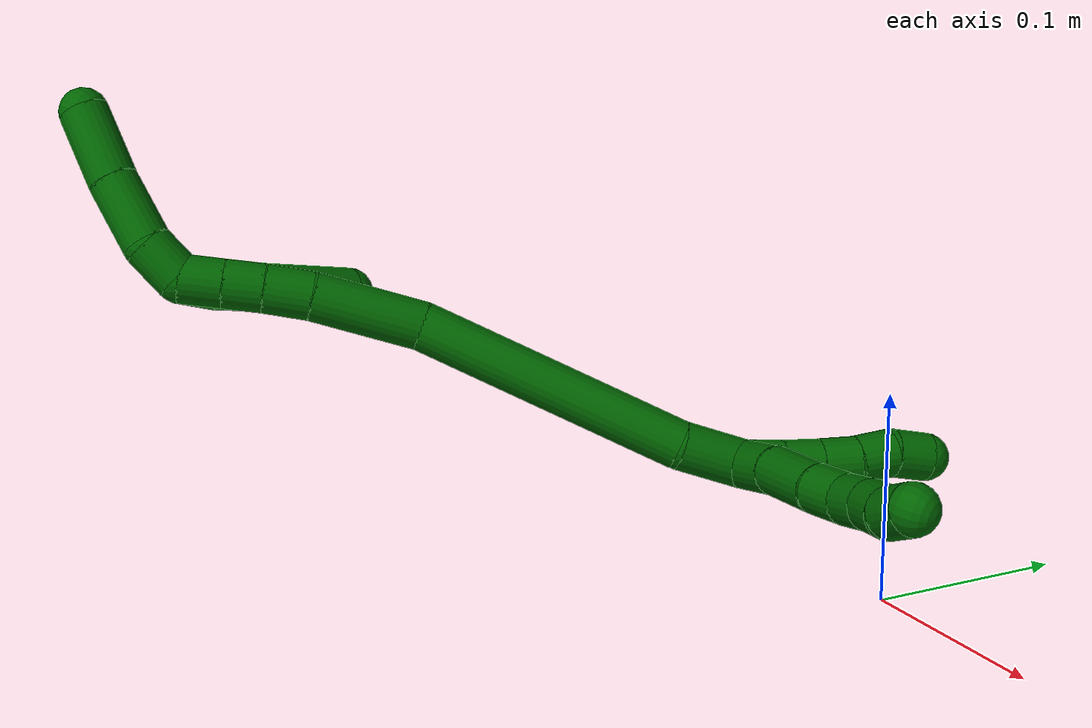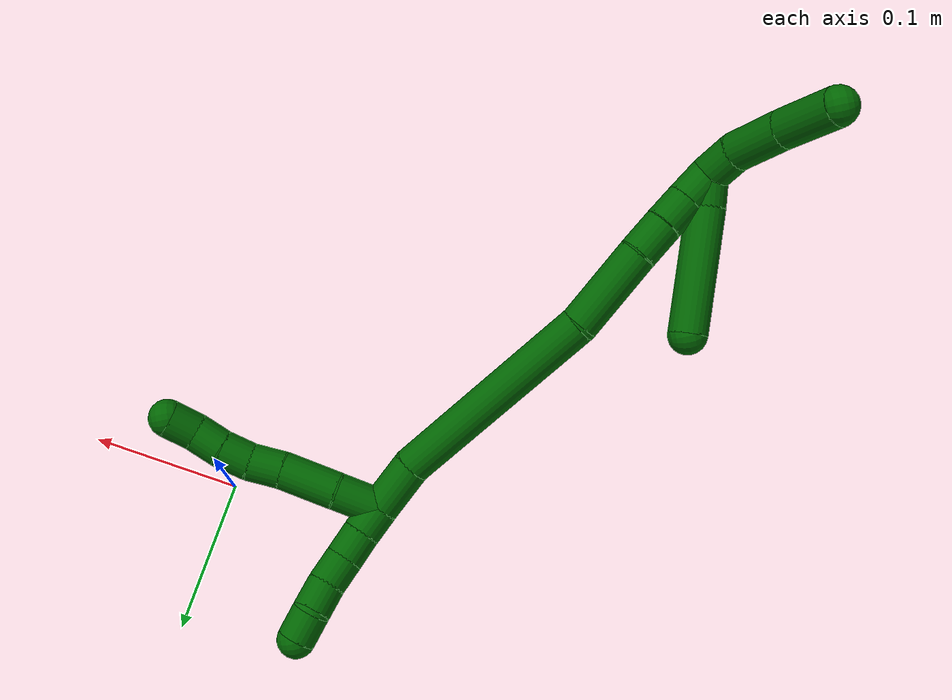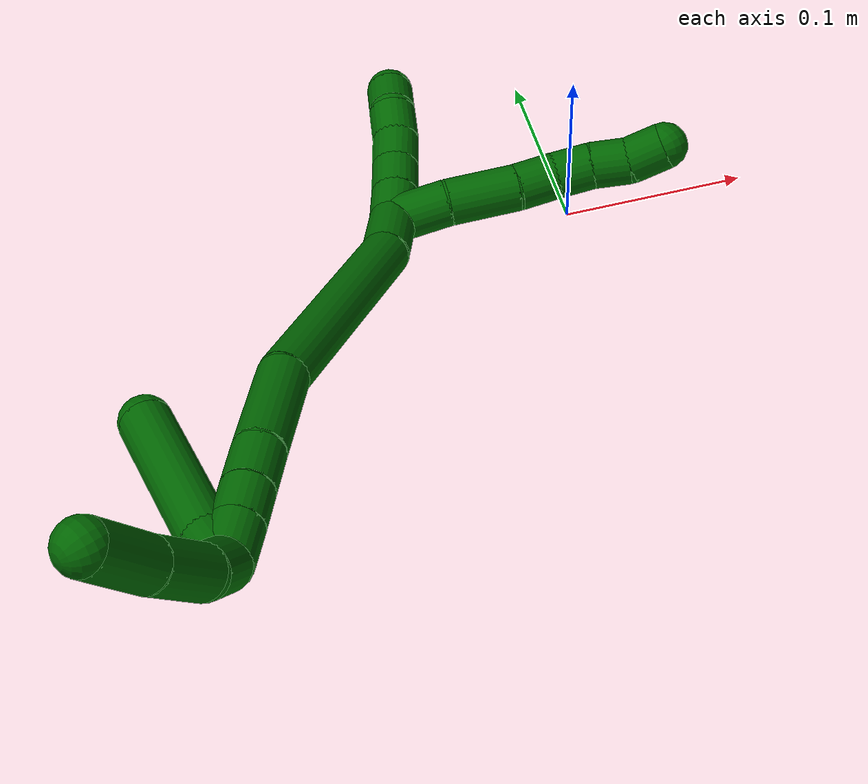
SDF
<sdf version="1.7">
 <world name="default">
  <model name="6">
   <static>0</static>
   <link name="6">
    <collision name="collision-cylinder-e_1_2_8">
     <pose>0.008303 -0.002987 -0.012387 2.90495 0.577544 2.3803</pose>
     <geometry><cylinder><radius>0.0125</radius><length>0.030417</length></cylinder></geometry>
     <surface>
      <friction><ode><mu>1.16</mu><mu2>1.16</mu2><slip1>0</slip1><slip2>0</slip2></ode></friction>
      <contact><ode><kp>1e+06</kp><kd>1</kd><max_vel>0</max_vel><min_depth>0.001</min_depth></ode></contact>
     </surface>
    </collision>
    <visual name="visual-cylinder-e_1_2_8">
     <pose>0.008303 -0.002987 -0.012387 2.90495 0.577544 2.3803</pose>
     <geometry><cylinder><radius>0.0125</radius><length>0.030417</length></cylinder></geometry>
     <material><ambient>0 0.392157 0.003922 1</ambient></material>
    </visual>
    <collision name="collision-cylinder-e_2_8_9">
     <pose>0.025251 -0.011282 -0.040423 2.81463 0.481945 1.95928</pose>
     <geometry><cylinder><radius>0.0125</radius><length>0.037298</length></cylinder></geometry>
     <surface>
      <friction><ode><mu>1.16</mu><mu2>1.16</mu2><slip1>0</slip1><slip2>0</slip2></ode></friction>
      <contact><ode><kp>1e+06</kp><kd>1</kd><max_vel>0</max_vel><min_depth>0.001</min_depth></ode></contact>
     </surface>
    </collision>
    <visual name="visual-cylinder-e_2_8_9">
     <pose>0.025251 -0.011282 -0.040423 2.81463 0.481945 1.95928</pose>
     <geometry><cylinder><radius>0.0125</radius><length>0.037298</length></cylinder></geometry>
     <material><ambient>0 0.392157 0.003922 1</ambient></material>
    </visual>
    <collision name="collision-cylinder-e_3_9_10">
     <pose>0.038267 -0.018772 -0.065835 2.92159 0.412053 2.16925</pose>
     <geometry><cylinder><radius>0.0125</radius><length>0.021836</length></cylinder></geometry>
     <surface>
      <friction><ode><mu>1.16</mu><mu2>1.16</mu2><slip1>0</slip1><slip2>0</slip2></ode></friction>
      <contact><ode><kp>1e+06</kp><kd>1</kd><max_vel>0</max_vel><min_depth>0.001</min_depth></ode></contact>
     </surface>
    </collision>
    <visual name="visual-cylinder-e_3_9_10">
     <pose>0.038267 -0.018772 -0.065835 2.92159 0.412053 2.16925</pose>
     <geometry><cylinder><radius>0.0125</radius><length>0.021836</length></cylinder></geometry>
     <material><ambient>0 0.392157 0.003922 1</ambient></material>
    </visual>
    <collision name="collision-cylinder-e_4_10_11">
     <pose>0.048507 -0.023344 -0.08352 2.84874 0.616829 2.27447</pose>
     <geometry><cylinder><radius>0.0125</radius><length>0.020285</length></cylinder></geometry>
     <surface>
      <friction><ode><mu>1.16</mu><mu2>1.16</mu2><slip1>0</slip1><slip2>0</slip2></ode></friction>
      <contact><ode><kp>1e+06</kp><kd>1</kd><max_vel>0</max_vel><min_depth>0.001</min_depth></ode></contact>
     </surface>
    </collision>
    <visual name="visual-cylinder-e_4_10_11">
     <pose>0.048507 -0.023344 -0.08352 2.84874 0.616829 2.27447</pose>
     <geometry><cylinder><radius>0.0125</radius><length>0.020285</length></cylinder></geometry>
     <material><ambient>0 0.392157 0.003922 1</ambient></material>
    </visual>
    <collision name="collision-cylinder-e_5_11_12">
     <pose>0.060412 -0.029429 -0.098521 2.66039 0.647348 1.87866</pose>
     <geometry><cylinder><radius>0.0125</radius><length>0.020026</length></cylinder></geometry>
     <surface>
      <friction><ode><mu>1.16</mu><mu2>1.16</mu2><slip1>0</slip1><slip2>0</slip2></ode></friction>
      <contact><ode><kp>1e+06</kp><kd>1</kd><max_vel>0</max_vel><min_depth>0.001</min_depth></ode></contact>
     </surface>
    </collision>
    <visual name="visual-cylinder-e_5_11_12">
     <pose>0.060412 -0.029429 -0.098521 2.66039 0.647348 1.87866</pose>
     <geometry><cylinder><radius>0.0125</radius><length>0.020026</length></cylinder></geometry>
     <material><ambient>0 0.392157 0.003922 1</ambient></material>
    </visual>
    <collision name="collision-cylinder-e_6_12_6">
     <pose>0.07365 -0.034139 -0.112568 2.99716 0.796564 2.80107</pose>
     <geometry><cylinder><radius>0.0125</radius><length>0.020137</length></cylinder></geometry>
     <surface>
      <friction><ode><mu>1.16</mu><mu2>1.16</mu2><slip1>0</slip1><slip2>0</slip2></ode></friction>
      <contact><ode><kp>1e+06</kp><kd>1</kd><max_vel>0</max_vel><min_depth>0.001</min_depth></ode></contact>
     </surface>
    </collision>
    <visual name="visual-cylinder-e_6_12_6">
     <pose>0.07365 -0.034139 -0.112568 2.99716 0.796564 2.80107</pose>
     <geometry><cylinder><radius>0.0125</radius><length>0.020137</length></cylinder></geometry>
     <material><ambient>0 0.392157 0.003922 1</ambient></material>
    </visual>
    <collision name="collision-cylinder-e_1_2_13">
     <pose>-0.003641 0.006012 -0.007113 -2.43986 -0.372718 0.951367</pose>
     <geometry><cylinder><radius>0.0125</radius><length>0.02</length></cylinder></geometry>
     <surface>
      <friction><ode><mu>1.16</mu><mu2>1.16</mu2><slip1>0</slip1><slip2>0</slip2></ode></friction>
      <contact><ode><kp>1e+06</kp><kd>1</kd><max_vel>0</max_vel><min_depth>0.001</min_depth></ode></contact>
     </surface>
    </collision>
    <visual name="visual-cylinder-e_1_2_13">
     <pose>-0.003641 0.006012 -0.007113 -2.43986 -0.372718 0.951367</pose>
     <geometry><cylinder><radius>0.0125</radius><length>0.02</length></cylinder></geometry>
     <material><ambient>0 0.392157 0.003922 1</ambient></material>
    </visual>
    <collision name="collision-cylinder-e_2_13_14">
     <pose>-0.01084 0.018491 -0.020974 -2.37753 -0.363614 0.858262</pose>
     <geometry><cylinder><radius>0.0125</radius><length>0.02</length></cylinder></geometry>
     <surface>
      <friction><ode><mu>1.16</mu><mu2>1.16</mu2><slip1>0</slip1><slip2>0</slip2></ode></friction>
      <contact><ode><kp>1e+06</kp><kd>1</kd><max_vel>0</max_vel><min_depth>0.001</min_depth></ode></contact>
     </surface>
    </collision>
    <visual name="visual-cylinder-e_2_13_14">
     <pose>-0.01084 0.018491 -0.020974 -2.37753 -0.363614 0.858262</pose>
     <geometry><cylinder><radius>0.0125</radius><length>0.02</length></cylinder></geometry>
     <material><ambient>0 0.392157 0.003922 1</ambient></material>
    </visual>
    <collision name="collision-cylinder-e_3_14_15">
     <pose>-0.017647 0.031617 -0.034436 -2.36017 -0.331146 0.770823</pose>
     <geometry><cylinder><radius>0.0125</radius><length>0.02</length></cylinder></geometry>
     <surface>
      <friction><ode><mu>1.16</mu><mu2>1.16</mu2><slip1>0</slip1><slip2>0</slip2></ode></friction>
      <contact><ode><kp>1e+06</kp><kd>1</kd><max_vel>0</max_vel><min_depth>0.001</min_depth></ode></contact>
     </surface>
    </collision>
    <visual name="visual-cylinder-e_3_14_15">
     <pose>-0.017647 0.031617 -0.034436 -2.36017 -0.331146 0.770823</pose>
     <geometry><cylinder><radius>0.0125</radius><length>0.02</length></cylinder></geometry>
     <material><ambient>0 0.392157 0.003922 1</ambient></material>
    </visual>
    <collision name="collision-cylinder-e_4_15_16">
     <pose>-0.023912 0.045901 -0.046876 -2.21502 -0.30611 0.599025</pose>
     <geometry><cylinder><radius>0.0125</radius><length>0.02</length></cylinder></geometry>
     <surface>
      <friction><ode><mu>1.16</mu><mu2>1.16</mu2><slip1>0</slip1><slip2>0</slip2></ode></friction>
      <contact><ode><kp>1e+06</kp><kd>1</kd><max_vel>0</max_vel><min_depth>0.001</min_depth></ode></contact>
     </surface>
    </collision>
    <visual name="visual-cylinder-e_4_15_16">
     <pose>-0.023912 0.045901 -0.046876 -2.21502 -0.30611 0.599025</pose>
     <geometry><cylinder><radius>0.0125</radius><length>0.02</length></cylinder></geometry>
     <material><ambient>0 0.392157 0.003922 1</ambient></material>
    </visual>
    <collision name="collision-cylinder-e_5_16_5">
     <pose>-0.032172 0.059215 -0.058935 -2.40959 -0.552315 1.27339</pose>
     <geometry><cylinder><radius>0.0125</radius><length>0.02</length></cylinder></geometry>
     <surface>
      <friction><ode><mu>1.16</mu><mu2>1.16</mu2><slip1>0</slip1><slip2>0</slip2></ode></friction>
      <contact><ode><kp>1e+06</kp><kd>1</kd><max_vel>0</max_vel><min_depth>0.001</min_depth></ode></contact>
     </surface>
    </collision>
    <visual name="visual-cylinder-e_5_16_5">
     <pose>-0.032172 0.059215 -0.058935 -2.40959 -0.552315 1.27339</pose>
     <geometry><cylinder><radius>0.0125</radius><length>0.02</length></cylinder></geometry>
     <material><ambient>0 0.392157 0.003922 1</ambient></material>
    </visual>
    <collision name="collision-cylinder-e_1_2_17">
     <pose>0.009152 -0.006911 0.013272 0.480108 0.548894 0.137616</pose>
     <geometry><cylinder><radius>0.0125</radius><length>0.035081</length></cylinder></geometry>
     <surface>
      <friction><ode><mu>1.16</mu><mu2>1.16</mu2><slip1>0</slip1><slip2>0</slip2></ode></friction>
      <contact><ode><kp>1e+06</kp><kd>1</kd><max_vel>0</max_vel><min_depth>0.001</min_depth></ode></contact>
     </surface>
    </collision>
    <visual name="visual-cylinder-e_1_2_17">
     <pose>0.009152 -0.006911 0.013272 0.480108 0.548894 0.137616</pose>
     <geometry><cylinder><radius>0.0125</radius><length>0.035081</length></cylinder></geometry>
     <material><ambient>0 0.392157 0.003922 1</ambient></material>
    </visual>
    <collision name="collision-cylinder-e_2_17_18">
     <pose>0.050701 -0.027645 0.088563 0.219283 0.471512 0.052877</pose>
     <geometry><cylinder><radius>0.0125</radius><length>0.142647</length></cylinder></geometry>
     <surface>
      <friction><ode><mu>1.16</mu><mu2>1.16</mu2><slip1>0</slip1><slip2>0</slip2></ode></friction>
      <contact><ode><kp>1e+06</kp><kd>1</kd><max_vel>0</max_vel><min_depth>0.001</min_depth></ode></contact>
     </surface>
    </collision>
    <visual name="visual-cylinder-e_2_17_18">
     <pose>0.050701 -0.027645 0.088563 0.219283 0.471512 0.052877</pose>
     <geometry><cylinder><radius>0.0125</radius><length>0.142647</length></cylinder></geometry>
     <material><ambient>0 0.392157 0.003922 1</ambient></material>
    </visual>
    <collision name="collision-cylinder-e_3_18_19">
     <pose>0.096744 -0.052821 0.172627 0.475616 0.503095 0.124426</pose>
     <geometry><cylinder><radius>0.0125</radius><length>0.056607</length></cylinder></geometry>
     <surface>
      <friction><ode><mu>1.16</mu><mu2>1.16</mu2><slip1>0</slip1><slip2>0</slip2></ode></friction>
      <contact><ode><kp>1e+06</kp><kd>1</kd><max_vel>0</max_vel><min_depth>0.001</min_depth></ode></contact>
     </surface>
    </collision>
    <visual name="visual-cylinder-e_3_18_19">
     <pose>0.096744 -0.052821 0.172627 0.475616 0.503095 0.124426</pose>
     <geometry><cylinder><radius>0.0125</radius><length>0.056607</length></cylinder></geometry>
     <material><ambient>0 0.392157 0.003922 1</ambient></material>
    </visual>
    <collision name="collision-cylinder-e_4_19_20">
     <pose>0.115116 -0.069821 0.204099 0.539596 0.406107 0.113752</pose>
     <geometry><cylinder><radius>0.0125</radius><length>0.023923</length></cylinder></geometry>
     <surface>
      <friction><ode><mu>1.16</mu><mu2>1.16</mu2><slip1>0</slip1><slip2>0</slip2></ode></friction>
      <contact><ode><kp>1e+06</kp><kd>1</kd><max_vel>0</max_vel><min_depth>0.001</min_depth></ode></contact>
     </surface>
    </collision>
    <visual name="visual-cylinder-e_4_19_20">
     <pose>0.115116 -0.069821 0.204099 0.539596 0.406107 0.113752</pose>
     <geometry><cylinder><radius>0.0125</radius><length>0.023923</length></cylinder></geometry>
     <material><ambient>0 0.392157 0.003922 1</ambient></material>
    </visual>
    <collision name="collision-cylinder-e_5_20_21">
     <pose>0.123367 -0.080523 0.221491 0.565701 0.357667 0.10498</pose>
     <geometry><cylinder><radius>0.0125</radius><length>0.020144</length></cylinder></geometry>
     <surface>
      <friction><ode><mu>1.16</mu><mu2>1.16</mu2><slip1>0</slip1><slip2>0</slip2></ode></friction>
      <contact><ode><kp>1e+06</kp><kd>1</kd><max_vel>0</max_vel><min_depth>0.001</min_depth></ode></contact>
     </surface>
    </collision>
    <visual name="visual-cylinder-e_5_20_21">
     <pose>0.123367 -0.080523 0.221491 0.565701 0.357667 0.10498</pose>
     <geometry><cylinder><radius>0.0125</radius><length>0.020144</length></cylinder></geometry>
     <material><ambient>0 0.392157 0.003922 1</ambient></material>
    </visual>
    <collision name="collision-cylinder-e_6_21_1">
     <pose>0.130579 -0.090887 0.238109 0.550067 0.348262 0.099198</pose>
     <geometry><cylinder><radius>0.0125</radius><length>0.021598</length></cylinder></geometry>
     <surface>
      <friction><ode><mu>1.16</mu><mu2>1.16</mu2><slip1>0</slip1><slip2>0</slip2></ode></friction>
      <contact><ode><kp>1e+06</kp><kd>1</kd><max_vel>0</max_vel><min_depth>0.001</min_depth></ode></contact>
     </surface>
    </collision>
    <visual name="visual-cylinder-e_6_21_1">
     <pose>0.130579 -0.090887 0.238109 0.550067 0.348262 0.099198</pose>
     <geometry><cylinder><radius>0.0125</radius><length>0.021598</length></cylinder></geometry>
     <material><ambient>0 0.392157 0.003922 1</ambient></material>
    </visual>
    <collision name="collision-cylinder-e_1_1_22">
     <pose>0.141531 -0.09473 0.25562 -0.163718 0.680528 -0.058075</pose>
     <geometry><cylinder><radius>0.0125</radius><length>0.0231</length></cylinder></geometry>
     <surface>
      <friction><ode><mu>1.16</mu><mu2>1.16</mu2><slip1>0</slip1><slip2>0</slip2></ode></friction>
      <contact><ode><kp>1e+06</kp><kd>1</kd><max_vel>0</max_vel><min_depth>0.001</min_depth></ode></contact>
     </surface>
    </collision>
    <visual name="visual-cylinder-e_1_1_22">
     <pose>0.141531 -0.09473 0.25562 -0.163718 0.680528 -0.058075</pose>
     <geometry><cylinder><radius>0.0125</radius><length>0.0231</length></cylinder></geometry>
     <material><ambient>0 0.392157 0.003922 1</ambient></material>
    </visual>
    <collision name="collision-cylinder-e_2_22_23">
     <pose>0.158298 -0.085531 0.278351 -0.5086 0.538947 -0.143333</pose>
     <geometry><cylinder><radius>0.0125</radius><length>0.037017</length></cylinder></geometry>
     <surface>
      <friction><ode><mu>1.16</mu><mu2>1.16</mu2><slip1>0</slip1><slip2>0</slip2></ode></friction>
      <contact><ode><kp>1e+06</kp><kd>1</kd><max_vel>0</max_vel><min_depth>0.001</min_depth></ode></contact>
     </surface>
    </collision>
    <visual name="visual-cylinder-e_2_22_23">
     <pose>0.158298 -0.085531 0.278351 -0.5086 0.538947 -0.143333</pose>
     <geometry><cylinder><radius>0.0125</radius><length>0.037017</length></cylinder></geometry>
     <material><ambient>0 0.392157 0.003922 1</ambient></material>
    </visual>
    <collision name="collision-cylinder-e_3_23_4">
     <pose>0.177833 -0.067978 0.306387 -0.606243 0.527389 -0.168479</pose>
     <geometry><cylinder><radius>0.0125</radius><length>0.039883</length></cylinder></geometry>
     <surface>
      <friction><ode><mu>1.16</mu><mu2>1.16</mu2><slip1>0</slip1><slip2>0</slip2></ode></friction>
      <contact><ode><kp>1e+06</kp><kd>1</kd><max_vel>0</max_vel><min_depth>0.001</min_depth></ode></contact>
     </surface>
    </collision>
    <visual name="visual-cylinder-e_3_23_4">
     <pose>0.177833 -0.067978 0.306387 -0.606243 0.527389 -0.168479</pose>
     <geometry><cylinder><radius>0.0125</radius><length>0.039883</length></cylinder></geometry>
     <material><ambient>0 0.392157 0.003922 1</ambient></material>
    </visual>
    <collision name="collision-cylinder-e_1_1_24">
     <pose>0.126665 -0.09018 0.243927 -2.0114 -0.852033 1.24238</pose>
     <geometry><cylinder><radius>0.0125</radius><length>0.020193</length></cylinder></geometry>
     <surface>
      <friction><ode><mu>1.16</mu><mu2>1.16</mu2><slip1>0</slip1><slip2>0</slip2></ode></friction>
      <contact><ode><kp>1e+06</kp><kd>1</kd><max_vel>0</max_vel><min_depth>0.001</min_depth></ode></contact>
     </surface>
    </collision>
    <visual name="visual-cylinder-e_1_1_24">
     <pose>0.126665 -0.09018 0.243927 -2.0114 -0.852033 1.24238</pose>
     <geometry><cylinder><radius>0.0125</radius><length>0.020193</length></cylinder></geometry>
     <material><ambient>0 0.392157 0.003922 1</ambient></material>
    </visual>
    <collision name="collision-cylinder-e_2_24_3">
     <pose>0.093277 -0.056748 0.227848 -2.02077 -0.702717 1.05737</pose>
     <geometry><cylinder><radius>0.0125</radius><length>0.079807</length></cylinder></geometry>
     <surface>
      <friction><ode><mu>1.16</mu><mu2>1.16</mu2><slip1>0</slip1><slip2>0</slip2></ode></friction>
      <contact><ode><kp>1e+06</kp><kd>1</kd><max_vel>0</max_vel><min_depth>0.001</min_depth></ode></contact>
     </surface>
    </collision>
    <visual name="visual-cylinder-e_2_24_3">
     <pose>0.093277 -0.056748 0.227848 -2.02077 -0.702717 1.05737</pose>
     <geometry><cylinder><radius>0.0125</radius><length>0.079807</length></cylinder></geometry>
     <material><ambient>0 0.392157 0.003922 1</ambient></material>
    </visual>
    <collision name="collision-sphere-3">
     <pose>0.067488 -0.029329 0.214604 0 -0 0</pose>
     <geometry><sphere><radius>0.0125</radius></sphere></geometry>
     <surface>
      <friction><ode><mu>1.16</mu><mu2>1.16</mu2><slip1>0</slip1><slip2>0</slip2></ode></friction>
      <contact><ode><kp>1e+06</kp><kd>1</kd><max_vel>0</max_vel><min_depth>0.001</min_depth></ode></contact>
     </surface>
    </collision>
    <visual name="visual-sphere-3">
     <pose>0.067488 -0.029329 0.214604 0 -0 0</pose>
     <geometry><sphere><radius>0.0125</radius></sphere></geometry>
     <material><ambient>0 0.392157 0.003922 1</ambient></material>
    </visual>
    <collision name="collision-sphere-24">
     <pose>0.119066 -0.084167 0.241092 0 -0 0</pose>
     <geometry><sphere><radius>0.0125</radius></sphere></geometry>
     <surface>
      <friction><ode><mu>1.16</mu><mu2>1.16</mu2><slip1>0</slip1><slip2>0</slip2></ode></friction>
      <contact><ode><kp>1e+06</kp><kd>1</kd><max_vel>0</max_vel><min_depth>0.001</min_depth></ode></contact>
     </surface>
    </collision>
    <visual name="visual-sphere-24">
     <pose>0.119066 -0.084167 0.241092 0 -0 0</pose>
     <geometry><sphere><radius>0.0125</radius></sphere></geometry>
     <material><ambient>0 0.392157 0.003922 1</ambient></material>
    </visual>
    <collision name="collision-sphere-4">
     <pose>0.187869 -0.058159 0.320548 0 -0 0</pose>
     <geometry><sphere><radius>0.0125</radius></sphere></geometry>
     <surface>
      <friction><ode><mu>1.16</mu><mu2>1.16</mu2><slip1>0</slip1><slip2>0</slip2></ode></friction>
      <contact><ode><kp>1e+06</kp><kd>1</kd><max_vel>0</max_vel><min_depth>0.001</min_depth></ode></contact>
     </surface>
    </collision>
    <visual name="visual-sphere-4">
     <pose>0.187869 -0.058159 0.320548 0 -0 0</pose>
     <geometry><sphere><radius>0.0125</radius></sphere></geometry>
     <material><ambient>0 0.392157 0.003922 1</ambient></material>
    </visual>
    <collision name="collision-sphere-23">
     <pose>0.167797 -0.077796 0.292226 0 -0 0</pose>
     <geometry><sphere><radius>0.0125</radius></sphere></geometry>
     <surface>
      <friction><ode><mu>1.16</mu><mu2>1.16</mu2><slip1>0</slip1><slip2>0</slip2></ode></friction>
      <contact><ode><kp>1e+06</kp><kd>1</kd><max_vel>0</max_vel><min_depth>0.001</min_depth></ode></contact>
     </surface>
    </collision>
    <visual name="visual-sphere-23">
     <pose>0.167797 -0.077796 0.292226 0 -0 0</pose>
     <geometry><sphere><radius>0.0125</radius></sphere></geometry>
     <material><ambient>0 0.392157 0.003922 1</ambient></material>
    </visual>
    <collision name="collision-sphere-22">
     <pose>0.148799 -0.093267 0.264477 0 -0 0</pose>
     <geometry><sphere><radius>0.0125</radius></sphere></geometry>
     <surface>
      <friction><ode><mu>1.16</mu><mu2>1.16</mu2><slip1>0</slip1><slip2>0</slip2></ode></friction>
      <contact><ode><kp>1e+06</kp><kd>1</kd><max_vel>0</max_vel><min_depth>0.001</min_depth></ode></contact>
     </surface>
    </collision>
    <visual name="visual-sphere-22">
     <pose>0.148799 -0.093267 0.264477 0 -0 0</pose>
     <geometry><sphere><radius>0.0125</radius></sphere></geometry>
     <material><ambient>0 0.392157 0.003922 1</ambient></material>
    </visual>
    <collision name="collision-sphere-1">
     <pose>0.134264 -0.096193 0.246763 0 -0 0</pose>
     <geometry><sphere><radius>0.0125</radius></sphere></geometry>
     <surface>
      <friction><ode><mu>1.16</mu><mu2>1.16</mu2><slip1>0</slip1><slip2>0</slip2></ode></friction>
      <contact><ode><kp>1e+06</kp><kd>1</kd><max_vel>0</max_vel><min_depth>0.001</min_depth></ode></contact>
     </surface>
    </collision>
    <visual name="visual-sphere-1">
     <pose>0.134264 -0.096193 0.246763 0 -0 0</pose>
     <geometry><sphere><radius>0.0125</radius></sphere></geometry>
     <material><ambient>0 0.392157 0.003922 1</ambient></material>
    </visual>
    <collision name="collision-sphere-21">
     <pose>0.126893 -0.08558 0.229456 0 -0 0</pose>
     <geometry><sphere><radius>0.0125</radius></sphere></geometry>
     <surface>
      <friction><ode><mu>1.16</mu><mu2>1.16</mu2><slip1>0</slip1><slip2>0</slip2></ode></friction>
      <contact><ode><kp>1e+06</kp><kd>1</kd><max_vel>0</max_vel><min_depth>0.001</min_depth></ode></contact>
     </surface>
    </collision>
    <visual name="visual-sphere-21">
     <pose>0.126893 -0.08558 0.229456 0 -0 0</pose>
     <geometry><sphere><radius>0.0125</radius></sphere></geometry>
     <material><ambient>0 0.392157 0.003922 1</ambient></material>
    </visual>
    <collision name="collision-sphere-12">
     <pose>0.066451 -0.033126 -0.105601 0 -0 0</pose>
     <geometry><sphere><radius>0.0125</radius></sphere></geometry>
     <surface>
      <friction><ode><mu>1.16</mu><mu2>1.16</mu2><slip1>0</slip1><slip2>0</slip2></ode></friction>
      <contact><ode><kp>1e+06</kp><kd>1</kd><max_vel>0</max_vel><min_depth>0.001</min_depth></ode></contact>
     </surface>
    </collision>
    <visual name="visual-sphere-12">
     <pose>0.066451 -0.033126 -0.105601 0 -0 0</pose>
     <geometry><sphere><radius>0.0125</radius></sphere></geometry>
     <material><ambient>0 0.392157 0.003922 1</ambient></material>
    </visual>
    <collision name="collision-sphere-11">
     <pose>0.054374 -0.025732 -0.091441 0 -0 0</pose>
     <geometry><sphere><radius>0.0125</radius></sphere></geometry>
     <surface>
      <friction><ode><mu>1.16</mu><mu2>1.16</mu2><slip1>0</slip1><slip2>0</slip2></ode></friction>
      <contact><ode><kp>1e+06</kp><kd>1</kd><max_vel>0</max_vel><min_depth>0.001</min_depth></ode></contact>
     </surface>
    </collision>
    <visual name="visual-sphere-11">
     <pose>0.054374 -0.025732 -0.091441 0 -0 0</pose>
     <geometry><sphere><radius>0.0125</radius></sphere></geometry>
     <material><ambient>0 0.392157 0.003922 1</ambient></material>
    </visual>
    <collision name="collision-sphere-10">
     <pose>0.04264 -0.020956 -0.075598 0 -0 0</pose>
     <geometry><sphere><radius>0.0125</radius></sphere></geometry>
     <surface>
      <friction><ode><mu>1.16</mu><mu2>1.16</mu2><slip1>0</slip1><slip2>0</slip2></ode></friction>
      <contact><ode><kp>1e+06</kp><kd>1</kd><max_vel>0</max_vel><min_depth>0.001</min_depth></ode></contact>
     </surface>
    </collision>
    <visual name="visual-sphere-10">
     <pose>0.04264 -0.020956 -0.075598 0 -0 0</pose>
     <geometry><sphere><radius>0.0125</radius></sphere></geometry>
     <material><ambient>0 0.392157 0.003922 1</ambient></material>
    </visual>
    <collision name="collision-sphere-9">
     <pose>0.033894 -0.016589 -0.056072 0 -0 0</pose>
     <geometry><sphere><radius>0.0125</radius></sphere></geometry>
     <surface>
      <friction><ode><mu>1.16</mu><mu2>1.16</mu2><slip1>0</slip1><slip2>0</slip2></ode></friction>
      <contact><ode><kp>1e+06</kp><kd>1</kd><max_vel>0</max_vel><min_depth>0.001</min_depth></ode></contact>
     </surface>
    </collision>
    <visual name="visual-sphere-9">
     <pose>0.033894 -0.016589 -0.056072 0 -0 0</pose>
     <geometry><sphere><radius>0.0125</radius></sphere></geometry>
     <material><ambient>0 0.392157 0.003922 1</ambient></material>
    </visual>
    <collision name="collision-sphere-2">
     <geometry><sphere><radius>0.0125</radius></sphere></geometry>
     <surface>
      <friction><ode><mu>1.16</mu><mu2>1.16</mu2><slip1>0</slip1><slip2>0</slip2></ode></friction>
      <contact><ode><kp>1e+06</kp><kd>1</kd><max_vel>0</max_vel><min_depth>0.001</min_depth></ode></contact>
     </surface>
    </collision>
    <visual name="visual-sphere-2">
     <geometry><sphere><radius>0.0125</radius></sphere></geometry>
     <material><ambient>0 0.392157 0.003922 1</ambient></material>
    </visual>
    <collision name="collision-sphere-19">
     <pose>0.110391 -0.064175 0.194671 0 -0 0</pose>
     <geometry><sphere><radius>0.0125</radius></sphere></geometry>
     <surface>
      <friction><ode><mu>1.16</mu><mu2>1.16</mu2><slip1>0</slip1><slip2>0</slip2></ode></friction>
      <contact><ode><kp>1e+06</kp><kd>1</kd><max_vel>0</max_vel><min_depth>0.001</min_depth></ode></contact>
     </surface>
    </collision>
    <visual name="visual-sphere-19">
     <pose>0.110391 -0.064175 0.194671 0 -0 0</pose>
     <geometry><sphere><radius>0.0125</radius></sphere></geometry>
     <material><ambient>0 0.392157 0.003922 1</ambient></material>
    </visual>
    <collision name="collision-sphere-8">
     <pose>0.016607 -0.005975 -0.024774 0 -0 0</pose>
     <geometry><sphere><radius>0.0125</radius></sphere></geometry>
     <surface>
      <friction><ode><mu>1.16</mu><mu2>1.16</mu2><slip1>0</slip1><slip2>0</slip2></ode></friction>
      <contact><ode><kp>1e+06</kp><kd>1</kd><max_vel>0</max_vel><min_depth>0.001</min_depth></ode></contact>
     </surface>
    </collision>
    <visual name="visual-sphere-8">
     <pose>0.016607 -0.005975 -0.024774 0 -0 0</pose>
     <geometry><sphere><radius>0.0125</radius></sphere></geometry>
     <material><ambient>0 0.392157 0.003922 1</ambient></material>
    </visual>
    <collision name="collision-sphere-6">
     <pose>0.080848 -0.035153 -0.119534 0 -0 0</pose>
     <geometry><sphere><radius>0.0125</radius></sphere></geometry>
     <surface>
      <friction><ode><mu>1.16</mu><mu2>1.16</mu2><slip1>0</slip1><slip2>0</slip2></ode></friction>
      <contact><ode><kp>1e+06</kp><kd>1</kd><max_vel>0</max_vel><min_depth>0.001</min_depth></ode></contact>
     </surface>
    </collision>
    <visual name="visual-sphere-6">
     <pose>0.080848 -0.035153 -0.119534 0 -0 0</pose>
     <geometry><sphere><radius>0.0125</radius></sphere></geometry>
     <material><ambient>0 0.392157 0.003922 1</ambient></material>
    </visual>
    <collision name="collision-sphere-13">
     <pose>-0.007283 0.012024 -0.014226 0 -0 0</pose>
     <geometry><sphere><radius>0.0125</radius></sphere></geometry>
     <surface>
      <friction><ode><mu>1.16</mu><mu2>1.16</mu2><slip1>0</slip1><slip2>0</slip2></ode></friction>
      <contact><ode><kp>1e+06</kp><kd>1</kd><max_vel>0</max_vel><min_depth>0.001</min_depth></ode></contact>
     </surface>
    </collision>
    <visual name="visual-sphere-13">
     <pose>-0.007283 0.012024 -0.014226 0 -0 0</pose>
     <geometry><sphere><radius>0.0125</radius></sphere></geometry>
     <material><ambient>0 0.392157 0.003922 1</ambient></material>
    </visual>
    <collision name="collision-sphere-14">
     <pose>-0.014396 0.024957 -0.027722 0 -0 0</pose>
     <geometry><sphere><radius>0.0125</radius></sphere></geometry>
     <surface>
      <friction><ode><mu>1.16</mu><mu2>1.16</mu2><slip1>0</slip1><slip2>0</slip2></ode></friction>
      <contact><ode><kp>1e+06</kp><kd>1</kd><max_vel>0</max_vel><min_depth>0.001</min_depth></ode></contact>
     </surface>
    </collision>
    <visual name="visual-sphere-14">
     <pose>-0.014396 0.024957 -0.027722 0 -0 0</pose>
     <geometry><sphere><radius>0.0125</radius></sphere></geometry>
     <material><ambient>0 0.392157 0.003922 1</ambient></material>
    </visual>
    <collision name="collision-sphere-15">
     <pose>-0.020899 0.038277 -0.041149 0 -0 0</pose>
     <geometry><sphere><radius>0.0125</radius></sphere></geometry>
     <surface>
      <friction><ode><mu>1.16</mu><mu2>1.16</mu2><slip1>0</slip1><slip2>0</slip2></ode></friction>
      <contact><ode><kp>1e+06</kp><kd>1</kd><max_vel>0</max_vel><min_depth>0.001</min_depth></ode></contact>
     </surface>
    </collision>
    <visual name="visual-sphere-15">
     <pose>-0.020899 0.038277 -0.041149 0 -0 0</pose>
     <geometry><sphere><radius>0.0125</radius></sphere></geometry>
     <material><ambient>0 0.392157 0.003922 1</ambient></material>
    </visual>
    <collision name="collision-sphere-16">
     <pose>-0.026926 0.053525 -0.052602 0 -0 0</pose>
     <geometry><sphere><radius>0.0125</radius></sphere></geometry>
     <surface>
      <friction><ode><mu>1.16</mu><mu2>1.16</mu2><slip1>0</slip1><slip2>0</slip2></ode></friction>
      <contact><ode><kp>1e+06</kp><kd>1</kd><max_vel>0</max_vel><min_depth>0.001</min_depth></ode></contact>
     </surface>
    </collision>
    <visual name="visual-sphere-16">
     <pose>-0.026926 0.053525 -0.052602 0 -0 0</pose>
     <geometry><sphere><radius>0.0125</radius></sphere></geometry>
     <material><ambient>0 0.392157 0.003922 1</ambient></material>
    </visual>
    <collision name="collision-sphere-5">
     <pose>-0.037419 0.064905 -0.065267 0 -0 0</pose>
     <geometry><sphere><radius>0.0125</radius></sphere></geometry>
     <surface>
      <friction><ode><mu>1.16</mu><mu2>1.16</mu2><slip1>0</slip1><slip2>0</slip2></ode></friction>
      <contact><ode><kp>1e+06</kp><kd>1</kd><max_vel>0</max_vel><min_depth>0.001</min_depth></ode></contact>
     </surface>
    </collision>
    <visual name="visual-sphere-5">
     <pose>-0.037419 0.064905 -0.065267 0 -0 0</pose>
     <geometry><sphere><radius>0.0125</radius></sphere></geometry>
     <material><ambient>0 0.392157 0.003922 1</ambient></material>
    </visual>
    <collision name="collision-sphere-17">
     <pose>0.018303 -0.013823 0.026544 0 -0 0</pose>
     <geometry><sphere><radius>0.0125</radius></sphere></geometry>
     <surface>
      <friction><ode><mu>1.16</mu><mu2>1.16</mu2><slip1>0</slip1><slip2>0</slip2></ode></friction>
      <contact><ode><kp>1e+06</kp><kd>1</kd><max_vel>0</max_vel><min_depth>0.001</min_depth></ode></contact>
     </surface>
    </collision>
    <visual name="visual-sphere-17">
     <pose>0.018303 -0.013823 0.026544 0 -0 0</pose>
     <geometry><sphere><radius>0.0125</radius></sphere></geometry>
     <material><ambient>0 0.392157 0.003922 1</ambient></material>
    </visual>
    <collision name="collision-sphere-18">
     <pose>0.083098 -0.041467 0.150583 0 -0 0</pose>
     <geometry><sphere><radius>0.0125</radius></sphere></geometry>
     <surface>
      <friction><ode><mu>1.16</mu><mu2>1.16</mu2><slip1>0</slip1><slip2>0</slip2></ode></friction>
      <contact><ode><kp>1e+06</kp><kd>1</kd><max_vel>0</max_vel><min_depth>0.001</min_depth></ode></contact>
     </surface>
    </collision>
    <visual name="visual-sphere-18">
     <pose>0.083098 -0.041467 0.150583 0 -0 0</pose>
     <geometry><sphere><radius>0.0125</radius></sphere></geometry>
     <material><ambient>0 0.392157 0.003922 1</ambient></material>
    </visual>
    <collision name="collision-sphere-20">
     <pose>0.119841 -0.075467 0.213526 0 -0 0</pose>
     <geometry><sphere><radius>0.0125</radius></sphere></geometry>
     <surface>
      <friction><ode><mu>1.16</mu><mu2>1.16</mu2><slip1>0</slip1><slip2>0</slip2></ode></friction>
      <contact><ode><kp>1e+06</kp><kd>1</kd><max_vel>0</max_vel><min_depth>0.001</min_depth></ode></contact>
     </surface>
    </collision>
    <visual name="visual-sphere-20">
     <pose>0.119841 -0.075467 0.213526 0 -0 0</pose>
     <geometry><sphere><radius>0.0125</radius></sphere></geometry>
     <material><ambient>0 0.392157 0.003922 1</ambient></material>
    </visual>
    <inertial>
     <pose>0.06834 -0.035059 0.101697 0 -0 0</pose>
     <mass>0.75</mass>
     <inertia>
      <ixx>0.000343</ixx>
      <ixy>0</ixy>
      <ixz>0</ixz>
      <iyy>0.000365</iyy>
      <iyz>0</iyz>
      <izz>-7.9e-05</izz>
     </inertia>
    </inertial>
   </link>
   <pose>-0.101093 -0.012405 0.039606 1.26986 -0.920975 -0.83734</pose>
  </model>
 </world>
</sdf>
